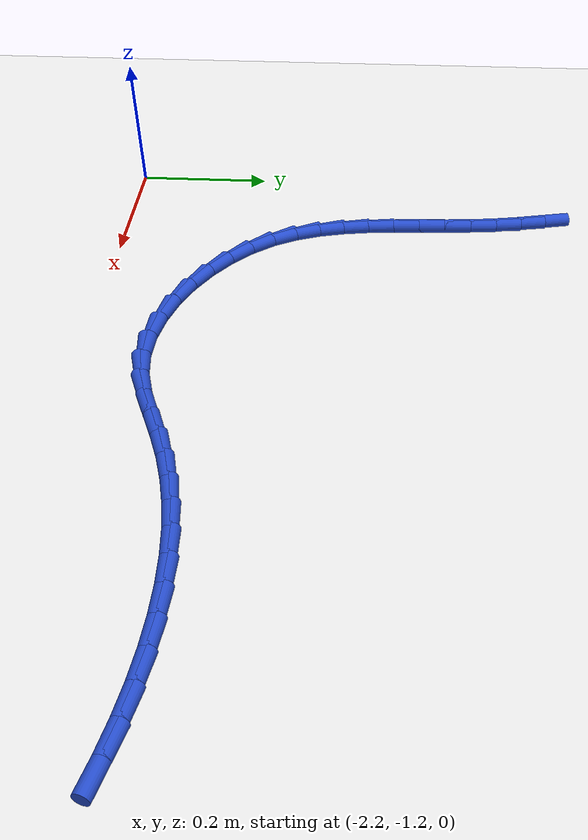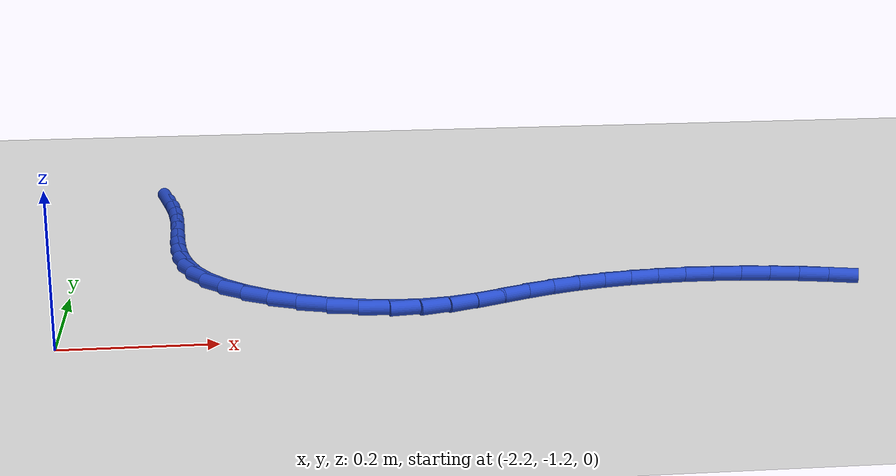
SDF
<sdf version="1.6">
 <world name="default">
  <model name="ground_plane">
   <static>1</static>
   <link name="link">
    <collision name="collision">
     <geometry><plane><normal>0 0 1</normal><size>100 100</size></plane></geometry>
     <surface><friction><ode><mu>100</mu><mu2>50</mu2></ode></friction></surface>
    </collision>
    <visual name="visual">
     <cast_shadows>0</cast_shadows>
     <geometry><plane><normal>0 0 1</normal><size>100 100</size></plane></geometry>
     <material>
      <script><uri>file://media/materials/scripts/gazebo.material</uri><name>Gazebo/WhiteGlow</name></script>
     </material>
    </visual>
   </link>
  </model>
  <model name="line">
   <link name="link_125">
    <pose>-2.090191564699516 -0.5530972658550037 0.01 0 1.57 -1.3725555245394456</pose>
    <collision name="collision">
     <geometry><cylinder><radius>0.01</radius><length>0.08</length></cylinder></geometry>
    </collision>
    <visual name="visual">
     <material>
      <script><name>Gazebo/Blue</name><uri>file://media/materials/scripts/gazebo.material</uri></script>
     </material>
     <geometry><cylinder><radius>0.01</radius><length>0.08</length></cylinder></geometry>
    </visual>
   </link>
   <link name="link_126">
    <pose>-2.082720996393662 -0.5902866227966004 0.01 0 1.57 -1.4119482771040177</pose>
    <collision name="collision">
     <geometry><cylinder><radius>0.01</radius><length>0.08</length></cylinder></geometry>
    </collision>
    <visual name="visual">
     <material>
      <script><name>Gazebo/Blue</name><uri>file://media/materials/scripts/gazebo.material</uri></script>
     </material>
     <geometry><cylinder><radius>0.01</radius><length>0.08</length></cylinder></geometry>
    </visual>
   </link>
   <link name="link_127">
    <pose>-2.076669653947017 -0.6280608314929186 0.01 0 1.57 -1.4627761316549164</pose>
    <collision name="collision">
     <geometry><cylinder><radius>0.01</radius><length>0.08</length></cylinder></geometry>
    </collision>
    <visual name="visual">
     <material>
      <script><name>Gazebo/Blue</name><uri>file://media/materials/scripts/gazebo.material</uri></script>
     </material>
     <geometry><cylinder><radius>0.01</radius><length>0.08</length></cylinder></geometry>
    </visual>
   </link>
   <link name="link_128">
    <pose>-2.0724921391365276 -0.6665837567588934 0.01 0 1.57 -1.5048833766950263</pose>
    <collision name="collision">
     <geometry><cylinder><radius>0.01</radius><length>0.08</length></cylinder></geometry>
    </collision>
    <visual name="visual">
     <material>
      <script><name>Gazebo/Blue</name><uri>file://media/materials/scripts/gazebo.material</uri></script>
     </material>
     <geometry><cylinder><radius>0.01</radius><length>0.08</length></cylinder></geometry>
    </visual>
   </link>
   <link name="link_129">
    <pose>-2.069907618366167 -0.7057380784890234 0.01 0 1.57 -1.522795083724144</pose>
    <collision name="collision">
     <geometry><cylinder><radius>0.01</radius><length>0.08</length></cylinder></geometry>
    </collision>
    <visual name="visual">
     <material>
      <script><name>Gazebo/Blue</name><uri>file://media/materials/scripts/gazebo.material</uri></script>
     </material>
     <geometry><cylinder><radius>0.01</radius><length>0.08</length></cylinder></geometry>
    </visual>
   </link>
   <link name="link_130">
    <pose>-2.0680134429090136 -0.7451687329982447 0.01 0 1.57 -1.516811957481076</pose>
    <collision name="collision">
     <geometry><cylinder><radius>0.01</radius><length>0.08</length></cylinder></geometry>
    </collision>
    <visual name="visual">
     <material>
      <script><name>Gazebo/Blue</name><uri>file://media/materials/scripts/gazebo.material</uri></script>
     </material>
     <geometry><cylinder><radius>0.01</radius><length>0.08</length></cylinder></geometry>
    </visual>
   </link>
   <link name="link_131">
    <pose>-2.065887392370336 -0.7845131736083476 0.01 0 1.57 -1.486663512086217</pose>
    <collision name="collision">
     <geometry><cylinder><radius>0.01</radius><length>0.08</length></cylinder></geometry>
    </collision>
    <visual name="visual">
     <material>
      <script><name>Gazebo/Blue</name><uri>file://media/materials/scripts/gazebo.material</uri></script>
     </material>
     <geometry><cylinder><radius>0.01</radius><length>0.08</length></cylinder></geometry>
    </visual>
   </link>
   <link name="link_132">
    <pose>-2.0626072463554035 -0.8234088536411223 0.01 0 1.57 -1.4310656446810799</pose>
    <collision name="collision">
     <geometry><cylinder><radius>0.01</radius><length>0.08</length></cylinder></geometry>
    </collision>
    <visual name="visual">
     <material>
      <script><name>Gazebo/Blue</name><uri>file://media/materials/scripts/gazebo.material</uri></script>
     </material>
     <geometry><cylinder><radius>0.01</radius><length>0.08</length></cylinder></geometry>
    </visual>
   </link>
   <link name="link_133">
    <pose>-2.057250784469484 -0.8614932264183565 0.01 0 1.57 -1.3481895184896402</pose>
    <collision name="collision">
     <geometry><cylinder><radius>0.01</radius><length>0.08</length></cylinder></geometry>
    </collision>
    <visual name="visual">
     <material>
      <script><name>Gazebo/Blue</name><uri>file://media/materials/scripts/gazebo.material</uri></script>
     </material>
     <geometry><cylinder><radius>0.01</radius><length>0.08</length></cylinder></geometry>
    </visual>
   </link>
   <link name="link_134">
    <pose>-2.048895786317847 -0.8984037452618415 0.01 0 1.57 -1.2367729983485047</pose>
    <collision name="collision">
     <geometry><cylinder><radius>0.01</radius><length>0.08</length></cylinder></geometry>
    </collision>
    <visual name="visual">
     <material>
      <script><name>Gazebo/Blue</name><uri>file://media/materials/scripts/gazebo.material</uri></script>
     </material>
     <geometry><cylinder><radius>0.01</radius><length>0.08</length></cylinder></geometry>
    </visual>
   </link>
   <link name="link_135">
    <pose>-2.0366200315057625 -0.9337778634933669 0.01 0 1.57 -1.0980815083125857</pose>
    <collision name="collision">
     <geometry><cylinder><radius>0.01</radius><length>0.08</length></cylinder></geometry>
    </collision>
    <visual name="visual">
     <material>
      <script><name>Gazebo/Blue</name><uri>file://media/materials/scripts/gazebo.material</uri></script>
     </material>
     <geometry><cylinder><radius>0.01</radius><length>0.08</length></cylinder></geometry>
    </visual>
   </link>
   <link name="link_136">
    <pose>-2.0195012996384976 -0.9672530344347222 0.01 0 1.57 -0.9420824836560155</pose>
    <collision name="collision">
     <geometry><cylinder><radius>0.01</radius><length>0.08</length></cylinder></geometry>
    </collision>
    <visual name="visual">
     <material>
      <script><name>Gazebo/Blue</name><uri>file://media/materials/scripts/gazebo.material</uri></script>
     </material>
     <geometry><cylinder><radius>0.01</radius><length>0.08</length></cylinder></geometry>
    </visual>
   </link>
   <link name="link_137">
    <pose>-1.996815761229914 -0.9984510566090123 0.01 0 1.57 -0.7971655749705411</pose>
    <collision name="collision">
     <geometry><cylinder><radius>0.01</radius><length>0.08</length></cylinder></geometry>
    </collision>
    <visual name="visual">
     <material>
      <script><name>Gazebo/Blue</name><uri>file://media/materials/scripts/gazebo.material</uri></script>
     </material>
     <geometry><cylinder><radius>0.01</radius><length>0.08</length></cylinder></geometry>
    </visual>
   </link>
   <link name="link_138">
    <pose>-1.969028702572665 -1.0268998967792942 0.01 0 1.57 -0.6672036095875931</pose>
    <collision name="collision">
     <geometry><cylinder><radius>0.01</radius><length>0.08</length></cylinder></geometry>
    </collision>
    <visual name="visual">
     <material>
      <script><name>Gazebo/Blue</name><uri>file://media/materials/scripts/gazebo.material</uri></script>
     </material>
     <geometry><cylinder><radius>0.01</radius><length>0.08</length></cylinder></geometry>
    </visual>
   </link>
   <link name="link_139">
    <pose>-1.9370464519974895 -1.0520927195880678 0.01 0 1.57 -0.5459812200183302</pose>
    <collision name="collision">
     <geometry><cylinder><radius>0.01</radius><length>0.08</length></cylinder></geometry>
    </collision>
    <visual name="visual">
     <material>
      <script><name>Gazebo/Blue</name><uri>file://media/materials/scripts/gazebo.material</uri></script>
     </material>
     <geometry><cylinder><radius>0.01</radius><length>0.08</length></cylinder></geometry>
    </visual>
   </link>
   <link name="link_140">
    <pose>-1.9017760622625512 -1.0735226325140985 0.01 0 1.57 -0.4276352298392127</pose>
    <collision name="collision">
     <geometry><cylinder><radius>0.01</radius><length>0.08</length></cylinder></geometry>
    </collision>
    <visual name="visual">
     <material>
      <script><name>Gazebo/Blue</name><uri>file://media/materials/scripts/gazebo.material</uri></script>
     </material>
     <geometry><cylinder><radius>0.01</radius><length>0.08</length></cylinder></geometry>
    </visual>
   </link>
   <link name="link_141">
    <pose>-1.8641245861260132 -1.090682743036152 0.01 0 1.57 -0.30652928992597056</pose>
    <collision name="collision">
     <geometry><cylinder><radius>0.01</radius><length>0.08</length></cylinder></geometry>
    </collision>
    <visual name="visual">
     <material>
      <script><name>Gazebo/Blue</name><uri>file://media/materials/scripts/gazebo.material</uri></script>
     </material>
     <geometry><cylinder><radius>0.01</radius><length>0.08</length></cylinder></geometry>
    </visual>
   </link>
   <link name="link_142">
    <pose>-1.824999076346038 -1.1030661586329928 0.01 0 1.57 -0.17699897561118877</pose>
    <collision name="collision">
     <geometry><cylinder><radius>0.01</radius><length>0.08</length></cylinder></geometry>
    </collision>
    <visual name="visual">
     <material>
      <script><name>Gazebo/Blue</name><uri>file://media/materials/scripts/gazebo.material</uri></script>
     </material>
     <geometry><cylinder><radius>0.01</radius><length>0.08</length></cylinder></geometry>
    </visual>
   </link>
   <link name="link_143">
    <pose>-1.78530658568079 -1.1101659867833862 0.01 0 1.57 -0.033260098668284645</pose>
    <collision name="collision">
     <geometry><cylinder><radius>0.01</radius><length>0.08</length></cylinder></geometry>
    </collision>
    <visual name="visual">
     <material>
      <script><name>Gazebo/Blue</name><uri>file://media/materials/scripts/gazebo.material</uri></script>
     </material>
     <geometry><cylinder><radius>0.01</radius><length>0.08</length></cylinder></geometry>
    </visual>
   </link>
   <link name="link_144">
    <pose>-1.745954166888431 -1.111475334966097 0.01 0 1.57 0.13009446554940096</pose>
    <collision name="collision">
     <geometry><cylinder><radius>0.01</radius><length>0.08</length></cylinder></geometry>
    </collision>
    <visual name="visual">
     <material>
      <script><name>Gazebo/Blue</name><uri>file://media/materials/scripts/gazebo.material</uri></script>
     </material>
     <geometry><cylinder><radius>0.01</radius><length>0.08</length></cylinder></geometry>
    </visual>
   </link>
   <link name="link_145">
    <pose>-1.7078475579662533 -1.1064897177823756 0.01 0 1.57 0.29272285114406993</pose>
    <collision name="collision">
     <geometry><cylinder><radius>0.01</radius><length>0.08</length></cylinder></geometry>
    </collision>
    <visual name="visual">
     <material>
      <script><name>Gazebo/Blue</name><uri>file://media/materials/scripts/gazebo.material</uri></script>
     </material>
     <geometry><cylinder><radius>0.01</radius><length>0.08</length></cylinder></geometry>
    </visual>
   </link>
   <link name="link_146">
    <pose>-1.6714474628414384 -1.0955194379362199 0.01 0 1.57 0.3930953276095441</pose>
    <collision name="collision">
     <geometry><cylinder><radius>0.01</radius><length>0.08</length></cylinder></geometry>
    </collision>
    <visual name="visual">
     <material>
      <script><name>Gazebo/Blue</name><uri>file://media/materials/scripts/gazebo.material</uri></script>
     </material>
     <geometry><cylinder><radius>0.01</radius><length>0.08</length></cylinder></geometry>
    </visual>
   </link>
   <link name="link_147">
    <pose>-1.6361239602233482 -1.080871563124963 0.01 0 1.57 0.421661014601035</pose>
    <collision name="collision">
     <geometry><cylinder><radius>0.01</radius><length>0.08</length></cylinder></geometry>
    </collision>
    <visual name="visual">
     <material>
      <script><name>Gazebo/Blue</name><uri>file://media/materials/scripts/gazebo.material</uri></script>
     </material>
     <geometry><cylinder><radius>0.01</radius><length>0.08</length></cylinder></geometry>
    </visual>
   </link>
   <link name="link_148">
    <pose>-1.6010831254127433 -1.0651534257562516 0.01 0 1.57 0.38187573467065483</pose>
    <collision name="collision">
     <geometry><cylinder><radius>0.01</radius><length>0.08</length></cylinder></geometry>
    </collision>
    <visual name="visual">
     <material>
      <script><name>Gazebo/Blue</name><uri>file://media/materials/scripts/gazebo.material</uri></script>
     </material>
     <geometry><cylinder><radius>0.01</radius><length>0.08</length></cylinder></geometry>
    </visual>
   </link>
   <link name="link_149">
    <pose>-1.5655592819254271 -1.0508874293824724 0.01 0 1.57 0.31173298512793596</pose>
    <collision name="collision">
     <geometry><cylinder><radius>0.01</radius><length>0.08</length></cylinder></geometry>
    </collision>
    <visual name="visual">
     <material>
      <script><name>Gazebo/Blue</name><uri>file://media/materials/scripts/gazebo.material</uri></script>
     </material>
     <geometry><cylinder><radius>0.01</radius><length>0.08</length></cylinder></geometry>
    </visual>
   </link>
   <link name="link_150">
    <pose>-1.5292548268457609 -1.0391887044844246 0.01 0 1.57 0.24305927986395015</pose>
    <collision name="collision">
     <geometry><cylinder><radius>0.01</radius><length>0.08</length></cylinder></geometry>
    </collision>
    <visual name="visual">
     <material>
      <script><name>Gazebo/Blue</name><uri>file://media/materials/scripts/gazebo.material</uri></script>
     </material>
     <geometry><cylinder><radius>0.01</radius><length>0.08</length></cylinder></geometry>
    </visual>
   </link>
   <link name="link_151">
    <pose>-1.4922572091604989 -1.0300147148644048 0.01 0 1.57 0.17705335083915716</pose>
    <collision name="collision">
     <geometry><cylinder><radius>0.01</radius><length>0.08</length></cylinder></geometry>
    </collision>
    <visual name="visual">
     <material>
      <script><name>Gazebo/Blue</name><uri>file://media/materials/scripts/gazebo.material</uri></script>
     </material>
     <geometry><cylinder><radius>0.01</radius><length>0.08</length></cylinder></geometry>
    </visual>
   </link>
   <link name="link_152">
    <pose>-1.4546653230604372 -1.0232885140769945 0.01 0 1.57 0.113857541622765</pose>
    <collision name="collision">
     <geometry><cylinder><radius>0.01</radius><length>0.08</length></cylinder></geometry>
    </collision>
    <visual name="visual">
     <material>
      <script><name>Gazebo/Blue</name><uri>file://media/materials/scripts/gazebo.material</uri></script>
     </material>
     <geometry><cylinder><radius>0.01</radius><length>0.08</length></cylinder></geometry>
    </visual>
   </link>
   <link name="link_153">
    <pose>-1.4165780627363707 -1.0189331556767742 0.01 0 1.57 0.053515954615092565</pose>
    <collision name="collision">
     <geometry><cylinder><radius>0.01</radius><length>0.08</length></cylinder></geometry>
    </collision>
    <visual name="visual">
     <material>
      <script><name>Gazebo/Blue</name><uri>file://media/materials/scripts/gazebo.material</uri></script>
     </material>
     <geometry><cylinder><radius>0.01</radius><length>0.08</length></cylinder></geometry>
    </visual>
   </link>
   <link name="link_154">
    <pose>-1.3780943223790942 -1.0168716932183255 0.01 0 1.57 -0.004009306024617643</pose>
    <collision name="collision">
     <geometry><cylinder><radius>0.01</radius><length>0.08</length></cylinder></geometry>
    </collision>
    <visual name="visual">
     <material>
      <script><name>Gazebo/Blue</name><uri>file://media/materials/scripts/gazebo.material</uri></script>
     </material>
     <geometry><cylinder><radius>0.01</radius><length>0.08</length></cylinder></geometry>
    </visual>
   </link>
   <link name="link_155">
    <pose>-1.3393129961794026 -1.0170271802562287 0.01 0 1.57 -0.05882096036735662</pose>
    <collision name="collision">
     <geometry><cylinder><radius>0.01</radius><length>0.08</length></cylinder></geometry>
    </collision>
    <visual name="visual">
     <material>
      <script><name>Gazebo/Blue</name><uri>file://media/materials/scripts/gazebo.material</uri></script>
     </material>
     <geometry><cylinder><radius>0.01</radius><length>0.08</length></cylinder></geometry>
    </visual>
   </link>
   <link name="link_156">
    <pose>-1.3003329783280904 -1.0193226703450644 0.01 0 1.57 -0.11107034804352962</pose>
    <collision name="collision">
     <geometry><cylinder><radius>0.01</radius><length>0.08</length></cylinder></geometry>
    </collision>
    <visual name="visual">
     <material>
      <script><name>Gazebo/Blue</name><uri>file://media/materials/scripts/gazebo.material</uri></script>
     </material>
     <geometry><cylinder><radius>0.01</radius><length>0.08</length></cylinder></geometry>
    </visual>
   </link>
   <link name="link_157">
    <pose>-1.2612531630159525 -1.0236812170394145 0.01 0 1.57 -0.16094332167143646</pose>
    <collision name="collision">
     <geometry><cylinder><radius>0.01</radius><length>0.08</length></cylinder></geometry>
    </collision>
    <visual name="visual">
     <material>
      <script><name>Gazebo/Blue</name><uri>file://media/materials/scripts/gazebo.material</uri></script>
     </material>
     <geometry><cylinder><radius>0.01</radius><length>0.08</length></cylinder></geometry>
    </visual>
   </link>
   <link name="link_158">
    <pose>-1.2221724444337843 -1.0300258738938588 0.01 0 1.57 -0.20864873339030313</pose>
    <collision name="collision">
     <geometry><cylinder><radius>0.01</radius><length>0.08</length></cylinder></geometry>
    </collision>
    <visual name="visual">
     <material>
      <script><name>Gazebo/Blue</name><uri>file://media/materials/scripts/gazebo.material</uri></script>
     </material>
     <geometry><cylinder><radius>0.01</radius><length>0.08</length></cylinder></geometry>
    </visual>
   </link>
   <link name="link_159">
    <pose>-1.1831897167723808 -1.0382796944629784 0.01 0 1.57 -0.25440956663382247</pose>
    <collision name="collision">
     <geometry><cylinder><radius>0.01</radius><length>0.08</length></cylinder></geometry>
    </collision>
    <visual name="visual">
     <material>
      <script><name>Gazebo/Blue</name><uri>file://media/materials/scripts/gazebo.material</uri></script>
     </material>
     <geometry><cylinder><radius>0.01</radius><length>0.08</length></cylinder></geometry>
    </visual>
   </link>
  </model>
 </world>
</sdf>
